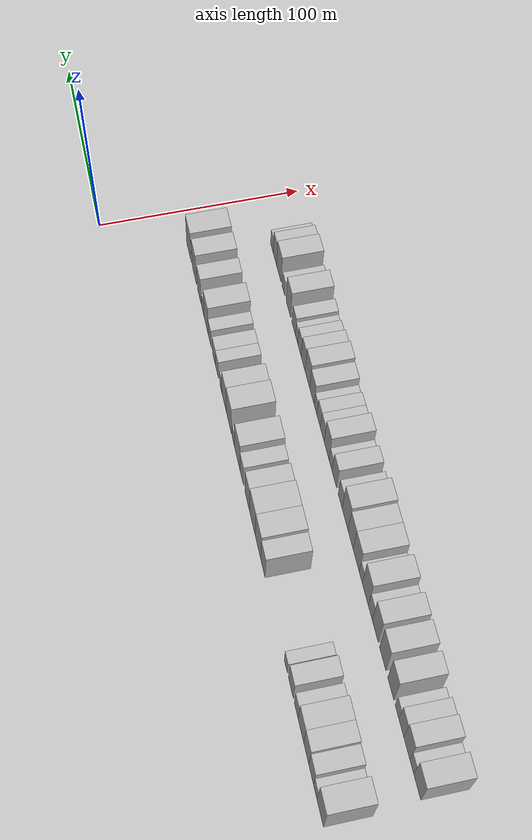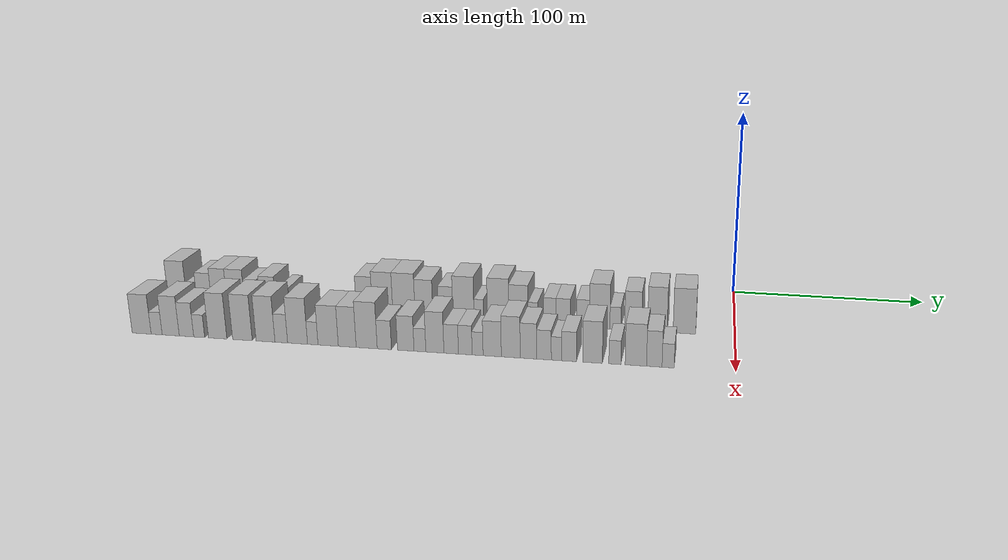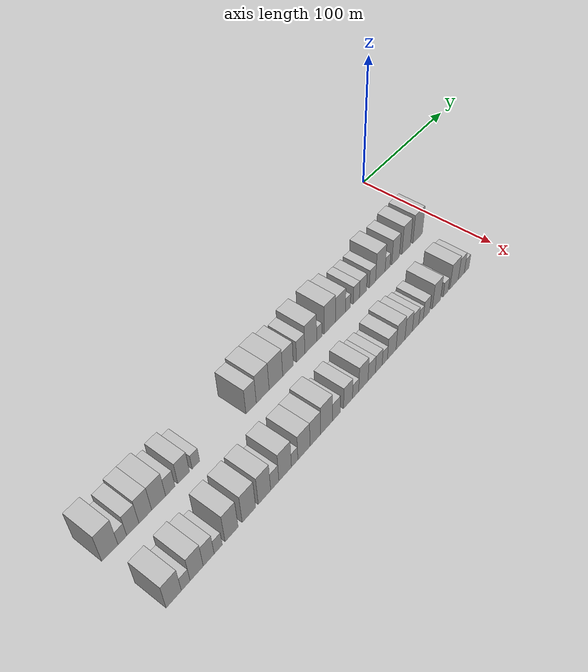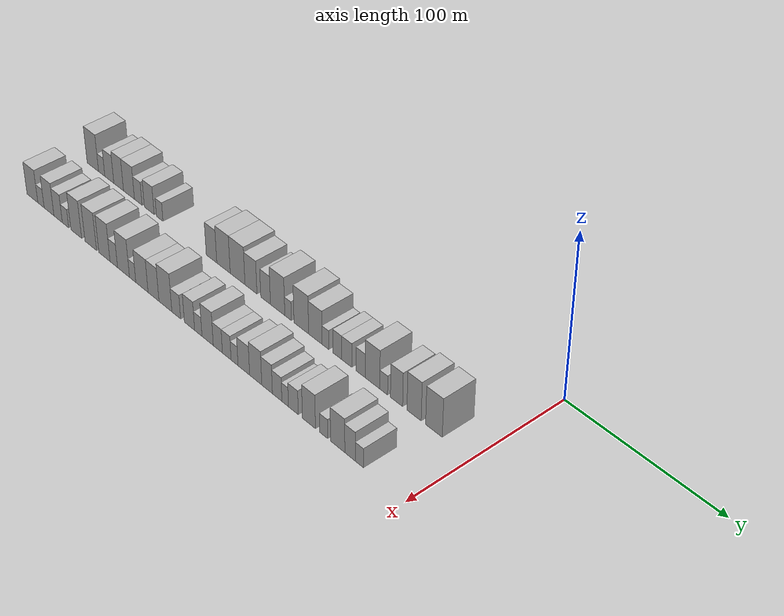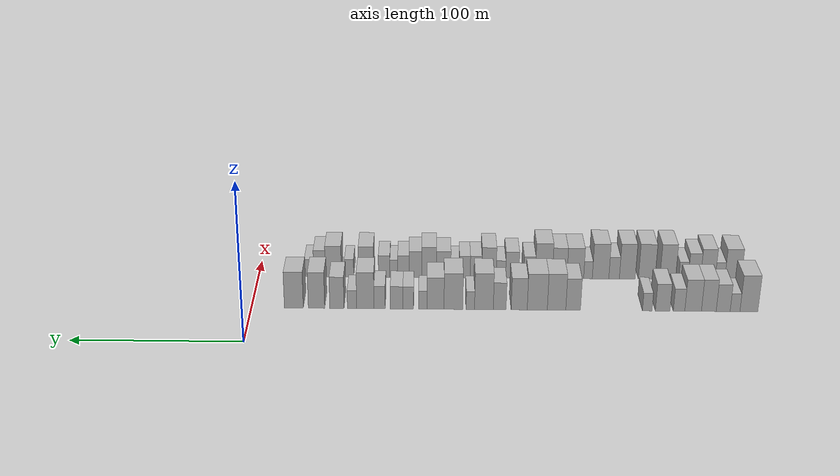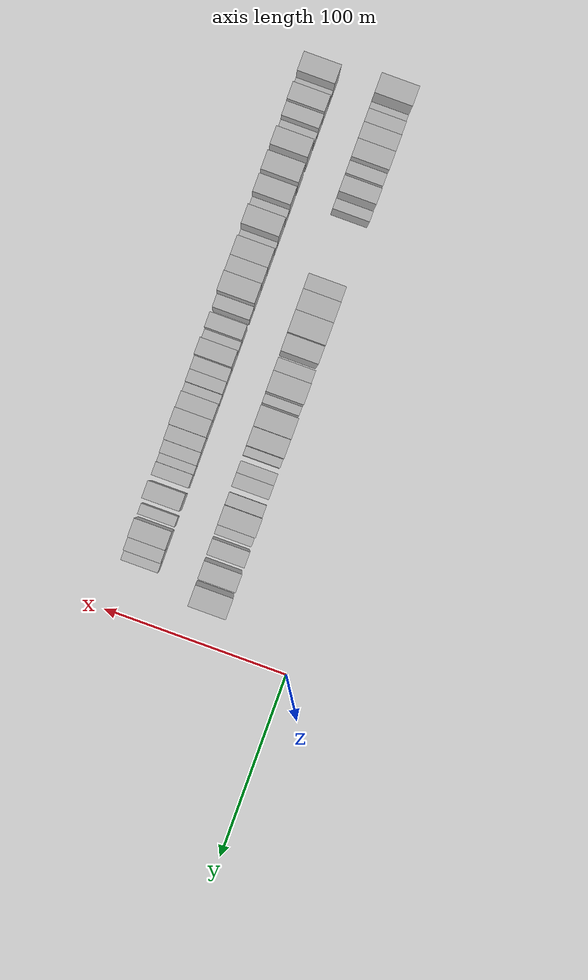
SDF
<sdf version="1.6">
 <world name="default">
  <model name="building_1">
   <static>1</static>
   <pose>50.0000 -294.7138 0 0.000000 0.000000 0.000000</pose>
   <link name="link">
    <pose>0 0 12.00 0 0 0</pose>
    <collision name="collision"><geometry><box><size>20.0000 10.5724 24.0000</size></box></geometry></collision>
    <visual name="visual">
     <cast_shadows>0</cast_shadows>
     <geometry><box><size>20.0000 10.5724 24.0000</size></box></geometry>
     <material>
      <script>
       <uri>model://HANNAS_wall/materials/scripts</uri>
       <uri>model://HANNAS_wall/materials/textures</uri>
       <name>vrc/HANNAS_wall</name>
      </script>
     </material>
    </visual>
   </link>
  </model>
  <model name="building_2">
   <static>1</static>
   <pose>50.0000 -286.5474 0 0.000000 0.000000 0.000000</pose>
   <link name="link">
    <pose>0 0 6.00 0 0 0</pose>
    <collision name="collision"><geometry><box><size>20.0000 5.7604 12.0000</size></box></geometry></collision>
    <visual name="visual">
     <cast_shadows>0</cast_shadows>
     <geometry><box><size>20.0000 5.7604 12.0000</size></box></geometry>
     <material>
      <script>
       <uri>model://HANNAS_wall/materials/scripts</uri>
       <uri>model://HANNAS_wall/materials/textures</uri>
       <name>vrc/HANNAS_wall</name>
      </script>
     </material>
    </visual>
   </link>
  </model>
  <model name="building_3">
   <static>1</static>
   <pose>50.0000 -279.5543 0 0.000000 0.000000 0.000000</pose>
   <link name="link">
    <pose>0 0 9.00 0 0 0</pose>
    <collision name="collision"><geometry><box><size>20.0000 8.2259 18.0000</size></box></geometry></collision>
    <visual name="visual">
     <cast_shadows>0</cast_shadows>
     <geometry><box><size>20.0000 8.2259 18.0000</size></box></geometry>
     <material>
      <script>
       <uri>model://HANNAS_wall/materials/scripts</uri>
       <uri>model://HANNAS_wall/materials/textures</uri>
       <name>vrc/HANNAS_wall</name>
      </script>
     </material>
    </visual>
   </link>
  </model>
  <model name="building_4">
   <static>1</static>
   <pose>50.0000 -271.0660 0 0.000000 0.000000 0.000000</pose>
   <link name="link">
    <pose>0 0 10.50 0 0 0</pose>
    <collision name="collision"><geometry><box><size>20.0000 8.7508 21.0000</size></box></geometry></collision>
    <visual name="visual">
     <cast_shadows>0</cast_shadows>
     <geometry><box><size>20.0000 8.7508 21.0000</size></box></geometry>
     <material>
      <script>
       <uri>model://HANNAS_wall/materials/scripts</uri>
       <uri>model://HANNAS_wall/materials/textures</uri>
       <name>vrc/HANNAS_wall</name>
      </script>
     </material>
    </visual>
   </link>
  </model>
  <model name="building_5">
   <static>1</static>
   <pose>50.0000 -261.7841 0 0.000000 0.000000 0.000000</pose>
   <link name="link">
    <pose>0 0 10.50 0 0 0</pose>
    <collision name="collision"><geometry><box><size>20.0000 9.8129 21.0000</size></box></geometry></collision>
    <visual name="visual">
     <cast_shadows>0</cast_shadows>
     <geometry><box><size>20.0000 9.8129 21.0000</size></box></geometry>
     <material>
      <script>
       <uri>model://HANNAS_wall/materials/scripts</uri>
       <uri>model://HANNAS_wall/materials/textures</uri>
       <name>vrc/HANNAS_wall</name>
      </script>
     </material>
    </visual>
   </link>
  </model>
  <model name="building_6">
   <static>1</static>
   <pose>50.0000 -253.4980 0 0.000000 0.000000 0.000000</pose>
   <link name="link">
    <pose>0 0 7.50 0 0 0</pose>
    <collision name="collision"><geometry><box><size>20.0000 6.7593 15.0000</size></box></geometry></collision>
    <visual name="visual">
     <cast_shadows>0</cast_shadows>
     <geometry><box><size>20.0000 6.7593 15.0000</size></box></geometry>
     <material>
      <script>
       <uri>model://HANNAS_wall/materials/scripts</uri>
       <uri>model://HANNAS_wall/materials/textures</uri>
       <name>vrc/HANNAS_wall</name>
      </script>
     </material>
    </visual>
   </link>
  </model>
  <model name="building_7">
   <static>1</static>
   <pose>50.0000 -243.8126 0 0.000000 0.000000 0.000000</pose>
   <link name="link">
    <pose>0 0 9.00 0 0 0</pose>
    <collision name="collision"><geometry><box><size>20.0000 8.6116 18.0000</size></box></geometry></collision>
    <visual name="visual">
     <cast_shadows>0</cast_shadows>
     <geometry><box><size>20.0000 8.6116 18.0000</size></box></geometry>
     <material>
      <script>
       <uri>model://HANNAS_wall/materials/scripts</uri>
       <uri>model://HANNAS_wall/materials/textures</uri>
       <name>vrc/HANNAS_wall</name>
      </script>
     </material>
    </visual>
   </link>
  </model>
  <model name="building_8">
   <static>1</static>
   <pose>50.0000 -234.6748 0 0.000000 0.000000 0.000000</pose>
   <link name="link">
    <pose>0 0 6.00 0 0 0</pose>
    <collision name="collision"><geometry><box><size>20.0000 5.6639 12.0000</size></box></geometry></collision>
    <visual name="visual">
     <cast_shadows>0</cast_shadows>
     <geometry><box><size>20.0000 5.6639 12.0000</size></box></geometry>
     <material>
      <script>
       <uri>model://HANNAS_wall/materials/scripts</uri>
       <uri>model://HANNAS_wall/materials/textures</uri>
       <name>vrc/HANNAS_wall</name>
      </script>
     </material>
    </visual>
   </link>
  </model>
  <model name="building_9">
   <static>1</static>
   <pose>50.0000 -190.8144 0 0.000000 0.000000 0.000000</pose>
   <link name="link">
    <pose>0 0 10.50 0 0 0</pose>
    <collision name="collision"><geometry><box><size>20.0000 8.6856 21.0000</size></box></geometry></collision>
    <visual name="visual">
     <cast_shadows>0</cast_shadows>
     <geometry><box><size>20.0000 8.6856 21.0000</size></box></geometry>
     <material>
      <script>
       <uri>model://HANNAS_wall/materials/scripts</uri>
       <uri>model://HANNAS_wall/materials/textures</uri>
       <name>vrc/HANNAS_wall</name>
      </script>
     </material>
    </visual>
   </link>
  </model>
  <model name="building_10">
   <static>1</static>
   <pose>50.0000 -180.9890 0 0.000000 0.000000 0.000000</pose>
   <link name="link">
    <pose>0 0 12.00 0 0 0</pose>
    <collision name="collision"><geometry><box><size>20.0000 10.9650 24.0000</size></box></geometry></collision>
    <visual name="visual">
     <cast_shadows>0</cast_shadows>
     <geometry><box><size>20.0000 10.9650 24.0000</size></box></geometry>
     <material>
      <script>
       <uri>model://HANNAS_wall/materials/scripts</uri>
       <uri>model://HANNAS_wall/materials/textures</uri>
       <name>vrc/HANNAS_wall</name>
      </script>
     </material>
    </visual>
   </link>
  </model>
  <model name="building_11">
   <static>1</static>
   <pose>50.0000 -169.5514 0 0.000000 0.000000 0.000000</pose>
   <link name="link">
    <pose>0 0 12.00 0 0 0</pose>
    <collision name="collision"><geometry><box><size>20.0000 11.9102 24.0000</size></box></geometry></collision>
    <visual name="visual">
     <cast_shadows>0</cast_shadows>
     <geometry><box><size>20.0000 11.9102 24.0000</size></box></geometry>
     <material>
      <script>
       <uri>model://HANNAS_wall/materials/scripts</uri>
       <uri>model://HANNAS_wall/materials/textures</uri>
       <name>vrc/HANNAS_wall</name>
      </script>
     </material>
    </visual>
   </link>
  </model>
  <model name="building_12">
   <static>1</static>
   <pose>50.0000 -158.8469 0 0.000000 0.000000 0.000000</pose>
   <link name="link">
    <pose>0 0 10.50 0 0 0</pose>
    <collision name="collision"><geometry><box><size>20.0000 9.4989 21.0000</size></box></geometry></collision>
    <visual name="visual">
     <cast_shadows>0</cast_shadows>
     <geometry><box><size>20.0000 9.4989 21.0000</size></box></geometry>
     <material>
      <script>
       <uri>model://HANNAS_wall/materials/scripts</uri>
       <uri>model://HANNAS_wall/materials/textures</uri>
       <name>vrc/HANNAS_wall</name>
      </script>
     </material>
    </visual>
   </link>
  </model>
  <model name="building_13">
   <static>1</static>
   <pose>50.0000 -147.2973 0 0.000000 0.000000 0.000000</pose>
   <link name="link">
    <pose>0 0 9.00 0 0 0</pose>
    <collision name="collision"><geometry><box><size>20.0000 7.6004 18.0000</size></box></geometry></collision>
    <visual name="visual">
     <cast_shadows>0</cast_shadows>
     <geometry><box><size>20.0000 7.6004 18.0000</size></box></geometry>
     <material>
      <script>
       <uri>model://HANNAS_wall/materials/scripts</uri>
       <uri>model://HANNAS_wall/materials/textures</uri>
       <name>vrc/HANNAS_wall</name>
      </script>
     </material>
    </visual>
   </link>
  </model>
  <model name="building_14">
   <static>1</static>
   <pose>50.0000 -137.9208 0 0.000000 0.000000 0.000000</pose>
   <link name="link">
    <pose>0 0 12.00 0 0 0</pose>
    <collision name="collision"><geometry><box><size>20.0000 11.1527 24.0000</size></box></geometry></collision>
    <visual name="visual">
     <cast_shadows>0</cast_shadows>
     <geometry><box><size>20.0000 11.1527 24.0000</size></box></geometry>
     <material>
      <script>
       <uri>model://HANNAS_wall/materials/scripts</uri>
       <uri>model://HANNAS_wall/materials/textures</uri>
       <name>vrc/HANNAS_wall</name>
      </script>
     </material>
    </visual>
   </link>
  </model>
  <model name="building_15">
   <static>1</static>
   <pose>50.0000 -129.8487 0 0.000000 0.000000 0.000000</pose>
   <link name="link">
    <pose>0 0 6.00 0 0 0</pose>
    <collision name="collision"><geometry><box><size>20.0000 4.9914 12.0000</size></box></geometry></collision>
    <visual name="visual">
     <cast_shadows>0</cast_shadows>
     <geometry><box><size>20.0000 4.9914 12.0000</size></box></geometry>
     <material>
      <script>
       <uri>model://HANNAS_wall/materials/scripts</uri>
       <uri>model://HANNAS_wall/materials/textures</uri>
       <name>vrc/HANNAS_wall</name>
      </script>
     </material>
    </visual>
   </link>
  </model>
  <model name="building_16">
   <static>1</static>
   <pose>50.0000 -119.7771 0 0.000000 0.000000 0.000000</pose>
   <link name="link">
    <pose>0 0 12.00 0 0 0</pose>
    <collision name="collision"><geometry><box><size>20.0000 11.1517 24.0000</size></box></geometry></collision>
    <visual name="visual">
     <cast_shadows>0</cast_shadows>
     <geometry><box><size>20.0000 11.1517 24.0000</size></box></geometry>
     <material>
      <script>
       <uri>model://HANNAS_wall/materials/scripts</uri>
       <uri>model://HANNAS_wall/materials/textures</uri>
       <name>vrc/HANNAS_wall</name>
      </script>
     </material>
    </visual>
   </link>
  </model>
  <model name="building_17">
   <static>1</static>
   <pose>50.0000 -109.1579 0 0.000000 0.000000 0.000000</pose>
   <link name="link">
    <pose>0 0 10.50 0 0 0</pose>
    <collision name="collision"><geometry><box><size>20.0000 10.0868 21.0000</size></box></geometry></collision>
    <visual name="visual">
     <cast_shadows>0</cast_shadows>
     <geometry><box><size>20.0000 10.0868 21.0000</size></box></geometry>
     <material>
      <script>
       <uri>model://HANNAS_wall/materials/scripts</uri>
       <uri>model://HANNAS_wall/materials/textures</uri>
       <name>vrc/HANNAS_wall</name>
      </script>
     </material>
    </visual>
   </link>
  </model>
  <model name="building_18">
   <static>1</static>
   <pose>50.0000 -101.6478 0 0.000000 0.000000 0.000000</pose>
   <link name="link">
    <pose>0 0 6.00 0 0 0</pose>
    <collision name="collision"><geometry><box><size>20.0000 4.9333 12.0000</size></box></geometry></collision>
    <visual name="visual">
     <cast_shadows>0</cast_shadows>
     <geometry><box><size>20.0000 4.9333 12.0000</size></box></geometry>
     <material>
      <script>
       <uri>model://HANNAS_wall/materials/scripts</uri>
       <uri>model://HANNAS_wall/materials/textures</uri>
       <name>vrc/HANNAS_wall</name>
      </script>
     </material>
    </visual>
   </link>
  </model>
  <model name="building_19">
   <static>1</static>
   <pose>50.0000 -92.9845 0 0.000000 0.000000 0.000000</pose>
   <link name="link">
    <pose>0 0 7.50 0 0 0</pose>
    <collision name="collision"><geometry><box><size>20.0000 6.3934 15.0000</size></box></geometry></collision>
    <visual name="visual">
     <cast_shadows>0</cast_shadows>
     <geometry><box><size>20.0000 6.3934 15.0000</size></box></geometry>
     <material>
      <script>
       <uri>model://HANNAS_wall/materials/scripts</uri>
       <uri>model://HANNAS_wall/materials/textures</uri>
       <name>vrc/HANNAS_wall</name>
      </script>
     </material>
    </visual>
   </link>
  </model>
  <model name="building_20">
   <static>1</static>
   <pose>50.0000 -86.0525 0 0.000000 0.000000 0.000000</pose>
   <link name="link">
    <pose>0 0 7.50 0 0 0</pose>
    <collision name="collision"><geometry><box><size>20.0000 7.4705 15.0000</size></box></geometry></collision>
    <visual name="visual">
     <cast_shadows>0</cast_shadows>
     <geometry><box><size>20.0000 7.4705 15.0000</size></box></geometry>
     <material>
      <script>
       <uri>model://HANNAS_wall/materials/scripts</uri>
       <uri>model://HANNAS_wall/materials/textures</uri>
       <name>vrc/HANNAS_wall</name>
      </script>
     </material>
    </visual>
   </link>
  </model>
  <model name="building_21">
   <static>1</static>
   <pose>50.0000 -75.9563 0 0.000000 0.000000 0.000000</pose>
   <link name="link">
    <pose>0 0 7.50 0 0 0</pose>
    <collision name="collision"><geometry><box><size>20.0000 6.7220 15.0000</size></box></geometry></collision>
    <visual name="visual">
     <cast_shadows>0</cast_shadows>
     <geometry><box><size>20.0000 6.7220 15.0000</size></box></geometry>
     <material>
      <script>
       <uri>model://HANNAS_wall/materials/scripts</uri>
       <uri>model://HANNAS_wall/materials/textures</uri>
       <name>vrc/HANNAS_wall</name>
      </script>
     </material>
    </visual>
   </link>
  </model>
  <model name="building_22">
   <static>1</static>
   <pose>50.0000 -67.4464 0 0.000000 0.000000 0.000000</pose>
   <link name="link">
    <pose>0 0 12.00 0 0 0</pose>
    <collision name="collision"><geometry><box><size>20.0000 10.2976 24.0000</size></box></geometry></collision>
    <visual name="visual">
     <cast_shadows>0</cast_shadows>
     <geometry><box><size>20.0000 10.2976 24.0000</size></box></geometry>
     <material>
      <script>
       <uri>model://HANNAS_wall/materials/scripts</uri>
       <uri>model://HANNAS_wall/materials/textures</uri>
       <name>vrc/HANNAS_wall</name>
      </script>
     </material>
    </visual>
   </link>
  </model>
  <model name="building_23">
   <static>1</static>
   <pose>50.0000 -59.5560 0 0.000000 0.000000 0.000000</pose>
   <link name="link">
    <pose>0 0 6.00 0 0 0</pose>
    <collision name="collision"><geometry><box><size>20.0000 5.4833 12.0000</size></box></geometry></collision>
    <visual name="visual">
     <cast_shadows>0</cast_shadows>
     <geometry><box><size>20.0000 5.4833 12.0000</size></box></geometry>
     <material>
      <script>
       <uri>model://HANNAS_wall/materials/scripts</uri>
       <uri>model://HANNAS_wall/materials/textures</uri>
       <name>vrc/HANNAS_wall</name>
      </script>
     </material>
    </visual>
   </link>
  </model>
  <model name="building_24">
   <static>1</static>
   <pose>50.0000 -50.5672 0 0.000000 0.000000 0.000000</pose>
   <link name="link">
    <pose>0 0 10.50 0 0 0</pose>
    <collision name="collision"><geometry><box><size>20.0000 8.4941 21.0000</size></box></geometry></collision>
    <visual name="visual">
     <cast_shadows>0</cast_shadows>
     <geometry><box><size>20.0000 8.4941 21.0000</size></box></geometry>
     <material>
      <script>
       <uri>model://HANNAS_wall/materials/scripts</uri>
       <uri>model://HANNAS_wall/materials/textures</uri>
       <name>vrc/HANNAS_wall</name>
      </script>
     </material>
    </visual>
   </link>
  </model>
  <model name="building_25">
   <static>1</static>
   <pose>50.0000 -38.4495 0 0.000000 0.000000 0.000000</pose>
   <link name="link">
    <pose>0 0 12.00 0 0 0</pose>
    <collision name="collision"><geometry><box><size>20.0000 9.7414 24.0000</size></box></geometry></collision>
    <visual name="visual">
     <cast_shadows>0</cast_shadows>
     <geometry><box><size>20.0000 9.7414 24.0000</size></box></geometry>
     <material>
      <script>
       <uri>model://HANNAS_wall/materials/scripts</uri>
       <uri>model://HANNAS_wall/materials/textures</uri>
       <name>vrc/HANNAS_wall</name>
      </script>
     </material>
    </visual>
   </link>
  </model>
  <model name="building_26">
   <static>1</static>
   <pose>50.0000 -24.9672 0 0.000000 0.000000 0.000000</pose>
   <link name="link">
    <pose>0 0 12.00 0 0 0</pose>
    <collision name="collision"><geometry><box><size>20.0000 11.2231 24.0000</size></box></geometry></collision>
    <visual name="visual">
     <cast_shadows>0</cast_shadows>
     <geometry><box><size>20.0000 11.2231 24.0000</size></box></geometry>
     <material>
      <script>
       <uri>model://HANNAS_wall/materials/scripts</uri>
       <uri>model://HANNAS_wall/materials/textures</uri>
       <name>vrc/HANNAS_wall</name>
      </script>
     </material>
    </visual>
   </link>
  </model>
  <model name="building_60">
   <static>1</static>
   <pose>90.0000 -292.9377 0 0.000000 0.000000 0.000000</pose>
   <link name="link">
    <pose>0 0 10.50 0 0 0</pose>
    <collision name="collision"><geometry><box><size>20.0000 10.1247 21.0000</size></box></geometry></collision>
    <visual name="visual">
     <cast_shadows>0</cast_shadows>
     <geometry><box><size>20.0000 10.1247 21.0000</size></box></geometry>
     <material>
      <script>
       <uri>model://HANNAS_wall/materials/scripts</uri>
       <uri>model://HANNAS_wall/materials/textures</uri>
       <name>vrc/HANNAS_wall</name>
      </script>
     </material>
    </visual>
   </link>
  </model>
  <model name="building_61">
   <static>1</static>
   <pose>90.0000 -284.9305 0 0.000000 0.000000 0.000000</pose>
   <link name="link">
    <pose>0 0 6.00 0 0 0</pose>
    <collision name="collision"><geometry><box><size>20.0000 5.8897 12.0000</size></box></geometry></collision>
    <visual name="visual">
     <cast_shadows>0</cast_shadows>
     <geometry><box><size>20.0000 5.8897 12.0000</size></box></geometry>
     <material>
      <script>
       <uri>model://HANNAS_wall/materials/scripts</uri>
       <uri>model://HANNAS_wall/materials/textures</uri>
       <name>vrc/HANNAS_wall</name>
      </script>
     </material>
    </visual>
   </link>
  </model>
  <model name="building_62">
   <static>1</static>
   <pose>90.0000 -277.4598 0 0.000000 0.000000 0.000000</pose>
   <link name="link">
    <pose>0 0 10.50 0 0 0</pose>
    <collision name="collision"><geometry><box><size>20.0000 9.0517 21.0000</size></box></geometry></collision>
    <visual name="visual">
     <cast_shadows>0</cast_shadows>
     <geometry><box><size>20.0000 9.0517 21.0000</size></box></geometry>
     <material>
      <script>
       <uri>model://HANNAS_wall/materials/scripts</uri>
       <uri>model://HANNAS_wall/materials/textures</uri>
       <name>vrc/HANNAS_wall</name>
      </script>
     </material>
    </visual>
   </link>
  </model>
  <model name="building_63">
   <static>1</static>
   <pose>90.0000 -269.1198 0 0.000000 0.000000 0.000000</pose>
   <link name="link">
    <pose>0 0 9.00 0 0 0</pose>
    <collision name="collision"><geometry><box><size>20.0000 7.6284 18.0000</size></box></geometry></collision>
    <visual name="visual">
     <cast_shadows>0</cast_shadows>
     <geometry><box><size>20.0000 7.6284 18.0000</size></box></geometry>
     <material>
      <script>
       <uri>model://HANNAS_wall/materials/scripts</uri>
       <uri>model://HANNAS_wall/materials/textures</uri>
       <name>vrc/HANNAS_wall</name>
      </script>
     </material>
    </visual>
   </link>
  </model>
  <model name="building_64">
   <static>1</static>
   <pose>90.0000 -262.4102 0 0.000000 0.000000 0.000000</pose>
   <link name="link">
    <pose>0 0 6.00 0 0 0</pose>
    <collision name="collision"><geometry><box><size>20.0000 5.7907 12.0000</size></box></geometry></collision>
    <visual name="visual">
     <cast_shadows>0</cast_shadows>
     <geometry><box><size>20.0000 5.7907 12.0000</size></box></geometry>
     <material>
      <script>
       <uri>model://HANNAS_wall/materials/scripts</uri>
       <uri>model://HANNAS_wall/materials/textures</uri>
       <name>vrc/HANNAS_wall</name>
      </script>
     </material>
    </visual>
   </link>
  </model>
  <model name="building_65">
   <static>1</static>
   <pose>90.0000 -252.6996 0 0.000000 0.000000 0.000000</pose>
   <link name="link">
    <pose>0 0 12.00 0 0 0</pose>
    <collision name="collision"><geometry><box><size>20.0000 9.6305 24.0000</size></box></geometry></collision>
    <visual name="visual">
     <cast_shadows>0</cast_shadows>
     <geometry><box><size>20.0000 9.6305 24.0000</size></box></geometry>
     <material>
      <script>
       <uri>model://HANNAS_wall/materials/scripts</uri>
       <uri>model://HANNAS_wall/materials/textures</uri>
       <name>vrc/HANNAS_wall</name>
      </script>
     </material>
    </visual>
   </link>
  </model>
  <model name="building_66">
   <static>1</static>
   <pose>90.0000 -239.7801 0 0.000000 0.000000 0.000000</pose>
   <link name="link">
    <pose>0 0 12.00 0 0 0</pose>
    <collision name="collision"><geometry><box><size>20.0000 10.2086 24.0000</size></box></geometry></collision>
    <visual name="visual">
     <cast_shadows>0</cast_shadows>
     <geometry><box><size>20.0000 10.2086 24.0000</size></box></geometry>
     <material>
      <script>
       <uri>model://HANNAS_wall/materials/scripts</uri>
       <uri>model://HANNAS_wall/materials/textures</uri>
       <name>vrc/HANNAS_wall</name>
      </script>
     </material>
    </visual>
   </link>
  </model>
  <model name="building_67">
   <static>1</static>
   <pose>90.0000 -227.8068 0 0.000000 0.000000 0.000000</pose>
   <link name="link">
    <pose>0 0 12.00 0 0 0</pose>
    <collision name="collision"><geometry><box><size>20.0000 9.7381 24.0000</size></box></geometry></collision>
    <visual name="visual">
     <cast_shadows>0</cast_shadows>
     <geometry><box><size>20.0000 9.7381 24.0000</size></box></geometry>
     <material>
      <script>
       <uri>model://HANNAS_wall/materials/scripts</uri>
       <uri>model://HANNAS_wall/materials/textures</uri>
       <name>vrc/HANNAS_wall</name>
      </script>
     </material>
    </visual>
   </link>
  </model>
  <model name="building_68">
   <static>1</static>
   <pose>90.0000 -219.6877 0 0.000000 0.000000 0.000000</pose>
   <link name="link">
    <pose>0 0 7.50 0 0 0</pose>
    <collision name="collision"><geometry><box><size>20.0000 6.5001 15.0000</size></box></geometry></collision>
    <visual name="visual">
     <cast_shadows>0</cast_shadows>
     <geometry><box><size>20.0000 6.5001 15.0000</size></box></geometry>
     <material>
      <script>
       <uri>model://HANNAS_wall/materials/scripts</uri>
       <uri>model://HANNAS_wall/materials/textures</uri>
       <name>vrc/HANNAS_wall</name>
      </script>
     </material>
    </visual>
   </link>
  </model>
  <model name="building_69">
   <static>1</static>
   <pose>90.0000 -211.3303 0 0.000000 0.000000 0.000000</pose>
   <link name="link">
    <pose>0 0 12.00 0 0 0</pose>
    <collision name="collision"><geometry><box><size>20.0000 10.2147 24.0000</size></box></geometry></collision>
    <visual name="visual">
     <cast_shadows>0</cast_shadows>
     <geometry><box><size>20.0000 10.2147 24.0000</size></box></geometry>
     <material>
      <script>
       <uri>model://HANNAS_wall/materials/scripts</uri>
       <uri>model://HANNAS_wall/materials/textures</uri>
       <name>vrc/HANNAS_wall</name>
      </script>
     </material>
    </visual>
   </link>
  </model>
  <model name="building_70">
   <static>1</static>
   <pose>90.0000 -203.5557 0 0.000000 0.000000 0.000000</pose>
   <link name="link">
    <pose>0 0 6.00 0 0 0</pose>
    <collision name="collision"><geometry><box><size>20.0000 5.3345 12.0000</size></box></geometry></collision>
    <visual name="visual">
     <cast_shadows>0</cast_shadows>
     <geometry><box><size>20.0000 5.3345 12.0000</size></box></geometry>
     <material>
      <script>
       <uri>model://HANNAS_wall/materials/scripts</uri>
       <uri>model://HANNAS_wall/materials/textures</uri>
       <name>vrc/HANNAS_wall</name>
      </script>
     </material>
    </visual>
   </link>
  </model>
  <model name="building_71">
   <static>1</static>
   <pose>90.0000 -195.7353 0 0.000000 0.000000 0.000000</pose>
   <link name="link">
    <pose>0 0 10.50 0 0 0</pose>
    <collision name="collision"><geometry><box><size>20.0000 10.3064 21.0000</size></box></geometry></collision>
    <visual name="visual">
     <cast_shadows>0</cast_shadows>
     <geometry><box><size>20.0000 10.3064 21.0000</size></box></geometry>
     <material>
      <script>
       <uri>model://HANNAS_wall/materials/scripts</uri>
       <uri>model://HANNAS_wall/materials/textures</uri>
       <name>vrc/HANNAS_wall</name>
      </script>
     </material>
    </visual>
   </link>
  </model>
  <model name="building_72">
   <static>1</static>
   <pose>90.0000 -186.0692 0 0.000000 0.000000 0.000000</pose>
   <link name="link">
    <pose>0 0 10.50 0 0 0</pose>
    <collision name="collision"><geometry><box><size>20.0000 9.0257 21.0000</size></box></geometry></collision>
    <visual name="visual">
     <cast_shadows>0</cast_shadows>
     <geometry><box><size>20.0000 9.0257 21.0000</size></box></geometry>
     <material>
      <script>
       <uri>model://HANNAS_wall/materials/scripts</uri>
       <uri>model://HANNAS_wall/materials/textures</uri>
       <name>vrc/HANNAS_wall</name>
      </script>
     </material>
    </visual>
   </link>
  </model>
  <model name="building_73">
   <static>1</static>
   <pose>90.0000 -176.2748 0 0.000000 0.000000 0.000000</pose>
   <link name="link">
    <pose>0 0 12.00 0 0 0</pose>
    <collision name="collision"><geometry><box><size>20.0000 10.5632 24.0000</size></box></geometry></collision>
    <visual name="visual">
     <cast_shadows>0</cast_shadows>
     <geometry><box><size>20.0000 10.5632 24.0000</size></box></geometry>
     <material>
      <script>
       <uri>model://HANNAS_wall/materials/scripts</uri>
       <uri>model://HANNAS_wall/materials/textures</uri>
       <name>vrc/HANNAS_wall</name>
      </script>
     </material>
    </visual>
   </link>
  </model>
  <model name="building_74">
   <static>1</static>
   <pose>90.0000 -167.4315 0 0.000000 0.000000 0.000000</pose>
   <link name="link">
    <pose>0 0 7.50 0 0 0</pose>
    <collision name="collision"><geometry><box><size>20.0000 7.1235 15.0000</size></box></geometry></collision>
    <visual name="visual">
     <cast_shadows>0</cast_shadows>
     <geometry><box><size>20.0000 7.1235 15.0000</size></box></geometry>
     <material>
      <script>
       <uri>model://HANNAS_wall/materials/scripts</uri>
       <uri>model://HANNAS_wall/materials/textures</uri>
       <name>vrc/HANNAS_wall</name>
      </script>
     </material>
    </visual>
   </link>
  </model>
  <model name="building_75">
   <static>1</static>
   <pose>90.0000 -156.7621 0 0.000000 0.000000 0.000000</pose>
   <link name="link">
    <pose>0 0 9.00 0 0 0</pose>
    <collision name="collision"><geometry><box><size>20.0000 8.2152 18.0000</size></box></geometry></collision>
    <visual name="visual">
     <cast_shadows>0</cast_shadows>
     <geometry><box><size>20.0000 8.2152 18.0000</size></box></geometry>
     <material>
      <script>
       <uri>model://HANNAS_wall/materials/scripts</uri>
       <uri>model://HANNAS_wall/materials/textures</uri>
       <name>vrc/HANNAS_wall</name>
      </script>
     </material>
    </visual>
   </link>
  </model>
  <model name="building_76">
   <static>1</static>
   <pose>90.0000 -149.7341 0 0.000000 0.000000 0.000000</pose>
   <link name="link">
    <pose>0 0 6.00 0 0 0</pose>
    <collision name="collision"><geometry><box><size>20.0000 5.8409 12.0000</size></box></geometry></collision>
    <visual name="visual">
     <cast_shadows>0</cast_shadows>
     <geometry><box><size>20.0000 5.8409 12.0000</size></box></geometry>
     <material>
      <script>
       <uri>model://HANNAS_wall/materials/scripts</uri>
       <uri>model://HANNAS_wall/materials/textures</uri>
       <name>vrc/HANNAS_wall</name>
      </script>
     </material>
    </visual>
   </link>
  </model>
  <model name="building_77">
   <static>1</static>
   <pose>90.0000 -142.3577 0 0.000000 0.000000 0.000000</pose>
   <link name="link">
    <pose>0 0 10.50 0 0 0</pose>
    <collision name="collision"><geometry><box><size>20.0000 8.9120 21.0000</size></box></geometry></collision>
    <visual name="visual">
     <cast_shadows>0</cast_shadows>
     <geometry><box><size>20.0000 8.9120 21.0000</size></box></geometry>
     <material>
      <script>
       <uri>model://HANNAS_wall/materials/scripts</uri>
       <uri>model://HANNAS_wall/materials/textures</uri>
       <name>vrc/HANNAS_wall</name>
      </script>
     </material>
    </visual>
   </link>
  </model>
  <model name="building_78">
   <static>1</static>
   <pose>90.0000 -134.3421 0 0.000000 0.000000 0.000000</pose>
   <link name="link">
    <pose>0 0 7.50 0 0 0</pose>
    <collision name="collision"><geometry><box><size>20.0000 7.1192 15.0000</size></box></geometry></collision>
    <visual name="visual">
     <cast_shadows>0</cast_shadows>
     <geometry><box><size>20.0000 7.1192 15.0000</size></box></geometry>
     <material>
      <script>
       <uri>model://HANNAS_wall/materials/scripts</uri>
       <uri>model://HANNAS_wall/materials/textures</uri>
       <name>vrc/HANNAS_wall</name>
      </script>
     </material>
    </visual>
   </link>
  </model>
  <model name="building_79">
   <static>1</static>
   <pose>90.0000 -127.4318 0 0.000000 0.000000 0.000000</pose>
   <link name="link">
    <pose>0 0 7.50 0 0 0</pose>
    <collision name="collision"><geometry><box><size>20.0000 6.7013 15.0000</size></box></geometry></collision>
    <visual name="visual">
     <cast_shadows>0</cast_shadows>
     <geometry><box><size>20.0000 6.7013 15.0000</size></box></geometry>
     <material>
      <script>
       <uri>model://HANNAS_wall/materials/scripts</uri>
       <uri>model://HANNAS_wall/materials/textures</uri>
       <name>vrc/HANNAS_wall</name>
      </script>
     </material>
    </visual>
   </link>
  </model>
  <model name="building_80">
   <static>1</static>
   <pose>90.0000 -121.4209 0 0.000000 0.000000 0.000000</pose>
   <link name="link">
    <pose>0 0 6.00 0 0 0</pose>
    <collision name="collision"><geometry><box><size>20.0000 5.3206 12.0000</size></box></geometry></collision>
    <visual name="visual">
     <cast_shadows>0</cast_shadows>
     <geometry><box><size>20.0000 5.3206 12.0000</size></box></geometry>
     <material>
      <script>
       <uri>model://HANNAS_wall/materials/scripts</uri>
       <uri>model://HANNAS_wall/materials/textures</uri>
       <name>vrc/HANNAS_wall</name>
      </script>
     </material>
    </visual>
   </link>
  </model>
  <model name="building_81">
   <static>1</static>
   <pose>90.0000 -114.3416 0 0.000000 0.000000 0.000000</pose>
   <link name="link">
    <pose>0 0 9.00 0 0 0</pose>
    <collision name="collision"><geometry><box><size>20.0000 8.8379 18.0000</size></box></geometry></collision>
    <visual name="visual">
     <cast_shadows>0</cast_shadows>
     <geometry><box><size>20.0000 8.8379 18.0000</size></box></geometry>
     <material>
      <script>
       <uri>model://HANNAS_wall/materials/scripts</uri>
       <uri>model://HANNAS_wall/materials/textures</uri>
       <name>vrc/HANNAS_wall</name>
      </script>
     </material>
    </visual>
   </link>
  </model>
  <model name="building_82">
   <static>1</static>
   <pose>90.0000 -105.3562 0 0.000000 0.000000 0.000000</pose>
   <link name="link">
    <pose>0 0 10.50 0 0 0</pose>
    <collision name="collision"><geometry><box><size>20.0000 9.1329 21.0000</size></box></geometry></collision>
    <visual name="visual">
     <cast_shadows>0</cast_shadows>
     <geometry><box><size>20.0000 9.1329 21.0000</size></box></geometry>
     <material>
      <script>
       <uri>model://HANNAS_wall/materials/scripts</uri>
       <uri>model://HANNAS_wall/materials/textures</uri>
       <name>vrc/HANNAS_wall</name>
      </script>
     </material>
    </visual>
   </link>
  </model>
  <model name="building_83">
   <static>1</static>
   <pose>90.0000 -96.8494 0 0.000000 0.000000 0.000000</pose>
   <link name="link">
    <pose>0 0 9.00 0 0 0</pose>
    <collision name="collision"><geometry><box><size>20.0000 7.8808 18.0000</size></box></geometry></collision>
    <visual name="visual">
     <cast_shadows>0</cast_shadows>
     <geometry><box><size>20.0000 7.8808 18.0000</size></box></geometry>
     <material>
      <script>
       <uri>model://HANNAS_wall/materials/scripts</uri>
       <uri>model://HANNAS_wall/materials/textures</uri>
       <name>vrc/HANNAS_wall</name>
      </script>
     </material>
    </visual>
   </link>
  </model>
  <model name="building_84">
   <static>1</static>
   <pose>90.0000 -89.4160 0 0.000000 0.000000 0.000000</pose>
   <link name="link">
    <pose>0 0 7.50 0 0 0</pose>
    <collision name="collision"><geometry><box><size>20.0000 6.9861 15.0000</size></box></geometry></collision>
    <visual name="visual">
     <cast_shadows>0</cast_shadows>
     <geometry><box><size>20.0000 6.9861 15.0000</size></box></geometry>
     <material>
      <script>
       <uri>model://HANNAS_wall/materials/scripts</uri>
       <uri>model://HANNAS_wall/materials/textures</uri>
       <name>vrc/HANNAS_wall</name>
      </script>
     </material>
    </visual>
   </link>
  </model>
  <model name="building_85">
   <static>1</static>
   <pose>90.0000 -83.5168 0 0.000000 0.000000 0.000000</pose>
   <link name="link">
    <pose>0 0 6.00 0 0 0</pose>
    <collision name="collision"><geometry><box><size>20.0000 4.8123 12.0000</size></box></geometry></collision>
    <visual name="visual">
     <cast_shadows>0</cast_shadows>
     <geometry><box><size>20.0000 4.8123 12.0000</size></box></geometry>
     <material>
      <script>
       <uri>model://HANNAS_wall/materials/scripts</uri>
       <uri>model://HANNAS_wall/materials/textures</uri>
       <name>vrc/HANNAS_wall</name>
      </script>
     </material>
    </visual>
   </link>
  </model>
  <model name="building_86">
   <static>1</static>
   <pose>90.0000 -77.5645 0 0.000000 0.000000 0.000000</pose>
   <link name="link">
    <pose>0 0 7.50 0 0 0</pose>
    <collision name="collision"><geometry><box><size>20.0000 7.0922 15.0000</size></box></geometry></collision>
    <visual name="visual">
     <cast_shadows>0</cast_shadows>
     <geometry><box><size>20.0000 7.0922 15.0000</size></box></geometry>
     <material>
      <script>
       <uri>model://HANNAS_wall/materials/scripts</uri>
       <uri>model://HANNAS_wall/materials/textures</uri>
       <name>vrc/HANNAS_wall</name>
      </script>
     </material>
    </visual>
   </link>
  </model>
  <model name="building_87">
   <static>1</static>
   <pose>90.0000 -66.3594 0 0.000000 0.000000 0.000000</pose>
   <link name="link">
    <pose>0 0 10.50 0 0 0</pose>
    <collision name="collision"><geometry><box><size>20.0000 9.3179 21.0000</size></box></geometry></collision>
    <visual name="visual">
     <cast_shadows>0</cast_shadows>
     <geometry><box><size>20.0000 9.3179 21.0000</size></box></geometry>
     <material>
      <script>
       <uri>model://HANNAS_wall/materials/scripts</uri>
       <uri>model://HANNAS_wall/materials/textures</uri>
       <name>vrc/HANNAS_wall</name>
      </script>
     </material>
    </visual>
   </link>
  </model>
  <model name="building_88">
   <static>1</static>
   <pose>90.0000 -55.8713 0 0.000000 0.000000 0.000000</pose>
   <link name="link">
    <pose>0 0 6.00 0 0 0</pose>
    <collision name="collision"><geometry><box><size>20.0000 5.6584 12.0000</size></box></geometry></collision>
    <visual name="visual">
     <cast_shadows>0</cast_shadows>
     <geometry><box><size>20.0000 5.6584 12.0000</size></box></geometry>
     <material>
      <script>
       <uri>model://HANNAS_wall/materials/scripts</uri>
       <uri>model://HANNAS_wall/materials/textures</uri>
       <name>vrc/HANNAS_wall</name>
      </script>
     </material>
    </visual>
   </link>
  </model>
  <model name="building_89">
   <static>1</static>
   <pose>90.0000 -46.0615 0 0.000000 0.000000 0.000000</pose>
   <link name="link">
    <pose>0 0 10.50 0 0 0</pose>
    <collision name="collision"><geometry><box><size>20.0000 9.9612 21.0000</size></box></geometry></collision>
    <visual name="visual">
     <cast_shadows>0</cast_shadows>
     <geometry><box><size>20.0000 9.9612 21.0000</size></box></geometry>
     <material>
      <script>
       <uri>model://HANNAS_wall/materials/scripts</uri>
       <uri>model://HANNAS_wall/materials/textures</uri>
       <name>vrc/HANNAS_wall</name>
      </script>
     </material>
    </visual>
   </link>
  </model>
  <model name="building_90">
   <static>1</static>
   <pose>90.0000 -37.4783 0 0.000000 0.000000 0.000000</pose>
   <link name="link">
    <pose>0 0 9.00 0 0 0</pose>
    <collision name="collision"><geometry><box><size>20.0000 7.2052 18.0000</size></box></geometry></collision>
    <visual name="visual">
     <cast_shadows>0</cast_shadows>
     <geometry><box><size>20.0000 7.2052 18.0000</size></box></geometry>
     <material>
      <script>
       <uri>model://HANNAS_wall/materials/scripts</uri>
       <uri>model://HANNAS_wall/materials/textures</uri>
       <name>vrc/HANNAS_wall</name>
      </script>
     </material>
    </visual>
   </link>
  </model>
  <model name="building_91">
   <static>1</static>
   <pose>90.0000 -31.0679 0 0.000000 0.000000 0.000000</pose>
   <link name="link">
    <pose>0 0 6.00 0 0 0</pose>
    <collision name="collision"><geometry><box><size>20.0000 5.6156 12.0000</size></box></geometry></collision>
    <visual name="visual">
     <cast_shadows>0</cast_shadows>
     <geometry><box><size>20.0000 5.6156 12.0000</size></box></geometry>
     <material>
      <script>
       <uri>model://HANNAS_wall/materials/scripts</uri>
       <uri>model://HANNAS_wall/materials/textures</uri>
       <name>vrc/HANNAS_wall</name>
      </script>
     </material>
    </visual>
   </link>
  </model>
 </world>
</sdf>
